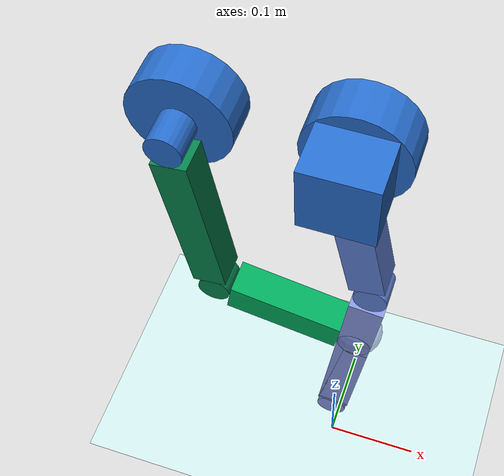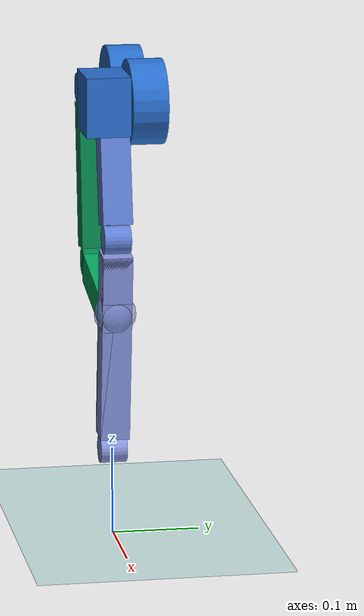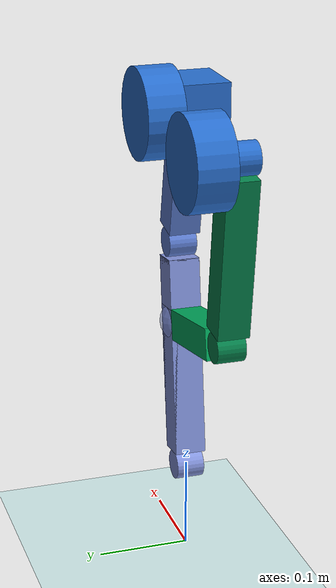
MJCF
<?xml version="1.0" encoding="utf-8"?>
<mujoco model="robot_0">
  <compiler angle="radian" inertiafromgeom="true" coordinate="local" />
  <option timestep="0.01" gravity="0 0 -9.81" integrator="RK4" />
  <size njmax="500" nconmax="100" />
  <worldbody>
    <geom name="floor" type="plane" size="10 10 0.1" pos="0 0 0" rgba="0.8 0.9 0.9 1" />
    <light name="light1" pos="0 0 3" dir="0 0 -1" directional="true" />
    <body name="robot_root" pos="0 0 0.5" quat="1 0 0 0">
      <body name="G">
        <geom name="G_vis0" type="box" rgba="0.1568627450980392 0.42745098039215684 0.8 1.0" contype="1" conaffinity="1" pos="0.0 0.0 0.0" quat="1.0 0.0 0.0 0.0" size="0.0335 0.0335 0.0335" />
        <inertial pos="0.0 0.0 0.0" mass="0.04903493747122909" diaginertia="3.66863057180579e-05 3.66863057180579e-05 3.66863057180579e-05" />
        <body name="L6" pos="0.0 0.0 0.0" quat="0.09853761796664233 5.490065323952282e-17 0.9951333266680702 5.490065323952282e-17">
          <joint name="Main_ground" type="hinge" axis="0 1 0" range="-3.141592653589793 3.141592653589793" damping="0.1" />
          <geom name="L6_vis0" type="box" rgba="0.37254901960784315 0.5019607843137255 0.8352941176470589 1.0" contype="1" conaffinity="1" pos="0.0 0.0 0.07649" quat="1.0 0.0 0.0 0.0" size="0.01675 0.01675 0.059735292703891774" />
          <inertial pos="0.0 0.0 0.07649" mass="0.09693685001461892" diaginertia="0.0001243657034733558 0.0001243657034733558 1.8131229988151018e-05" />
          <body name="L5" pos="3.9850810789398094e-17 0.0 0.15297058540778355" quat="0.9874789974914651 0.0 0.15775052935965425 0.0">
            <joint name="Main_knee" type="hinge" axis="0 1 0" range="-3.141592653589793 3.141592653589793" damping="0.1" />
            <geom name="L5_vis0" type="box" rgba="0.5176470588235295 0.5843137254901961 0.8705882352941177 1.0" contype="1" conaffinity="1" pos="3.122502256758253e-17 0.0 0.1258967831201417" quat="1.0 0.0 0.0 0.0" size="0.016750000417232513 0.016750000417232513 0.10914678270290917" />
            <geom name="L5_vis1" type="box" rgba="0.5176470588235295 0.5843137254901961 0.8705882352941177 1.0" contype="1" conaffinity="1" pos="1.3877787807814457e-17 0.0 0.04406387409204959" quat="1.0 0.0 0.0 0.0" size="0.016750000417232513 0.016750000417232513 0.02731387367481708" />
            <geom name="L5_vis2" type="box" rgba="0.5176470588235295 0.5843137254901961 0.8705882352941177 1.0" contype="1" conaffinity="1" pos="3.8163916471489756e-17 0.0 0.16996065721219128" quat="1.0 0.0 0.0 0.0" size="0.016750000417232513 0.016750000417232513 0.06508290861085958" />
            <inertial pos="0.0 0.0 0.11331" mass="0.20430196607254722" diaginertia="0.0318890529501516 0.03195007230862345 9.923234039844751e-05" />
            <body name="EE" pos="5.551115123125783e-17 0.0 0.2517935662402834" quat="0.05967898086042496 5.74689170874561e-17 0.9982176211846098 5.74689170874561e-17">
              <geom name="EE_vis0" type="sphere" rgba="0.6431372549019608 0.6666666666666666 0.9058823529411765 1.0" contype="1" conaffinity="1" pos="0.0 0.0 0.0" quat="1.0 0.0 0.0 0.0" size="0.002142857142857143" />
              <inertial pos="0.0 0.0 0.0" mass="2.979933439782622e-05" diaginertia="5.473347134294612e-11 5.473347134294612e-11 5.473347134294612e-11" />
            </body>
            <body name="Main_ee_L5Unit" pos="5.551115123125783e-17 0.0 0.2517935662402834" quat="0.04219941206070872 0.04219941206070862 0.705846449039542 -0.7058464490395416">
              <geom name="Main_ee_L5Unit_vis0" type="cylinder" rgba="0.5176470588235295 0.5843137254901961 0.8705882352941177 0.9" contype="1" conaffinity="1" size="0.016 0.015" />
              <inertial pos="0 0 0" mass="0.1" diaginertia="0.00065 0.00065 0.0008" />
            </body>
            <body name="Main_connection_2_L5Pseudo" pos="5.551115123125783e-17 0.0 0.08812774818409916" quat="0.7309513322872746 0.0 -0.6824295933116165 0.0">
              <geom name="Main_connection_2_L5Pseudo_vis0" type="sphere" rgba="0.5176470588235295 0.5843137254901961 0.8705882352941177 0.5" contype="1" conaffinity="1" size="0.02392857202461788" />
              <inertial pos="0 0 0" mass="0.05" diaginertia="1.145153118274651e-05 1.145153118274651e-05 1.145153118274651e-05" />
            </body>
          </body>
          <body name="Main_knee_L6Unit" pos="3.9850810789398094e-17 0.0 0.15297058540778355" quat="0.6982530954055087 0.6982530954055086 0.11154646904597909 -0.11154646904597906">
            <geom name="Main_knee_L6Unit_vis0" type="cylinder" rgba="0.37254901960784315 0.5019607843137255 0.8352941176470589 0.9" contype="1" conaffinity="1" size="0.016 0.015" />
            <inertial pos="0 0 0" mass="0.1" diaginertia="0.00065 0.00065 0.0008" />
          </body>
        </body>
        <body name="Main_ground_GActuator" pos="0.0 0.036750000000000005 0.0" quat="0.0696766178661822 0.06967661786618214 0.7036655234717202 -0.7036655234717203">
          <geom name="Main_ground_GActuator_vis0" type="cylinder" rgba="0.1568627450980392 0.42745098039215684 0.8 0.9" contype="1" conaffinity="1" size="0.048 0.02" />
          <inertial pos="0 0 0" mass="0.44" diaginertia="0.0067466666666666664 0.0067466666666666664 0.01056" />
        </body>
        <body name="Main_ground_GUnit" pos="0.0 0.0 0.0" quat="0.0696766178661822 0.06967661786618214 0.7036655234717202 -0.7036655234717203">
          <geom name="Main_ground_GUnit_vis0" type="cylinder" rgba="0.1568627450980392 0.42745098039215684 0.8 0.9" contype="1" conaffinity="1" size="0.01675 0.01675" />
          <inertial pos="0 0 0" mass="0.1" diaginertia="0.0006979166666666668 0.0006979166666666668 0.0008375000000000001" />
        </body>
        <body name="L3" pos="-0.15 0.0 -0.01" quat="0.06213744155632902 5.73091937666162e-17 0.9980676020975903 5.73091937666162e-17">
          <joint name="Ground_connection" type="hinge" axis="0 1 0" range="-3.141592653589793 3.141592653589793" damping="0.1" />
          <geom name="L3_vis0" type="box" rgba="0.01568627450980392 0.5058823529411764 0.29411764705882354 1.0" contype="1" conaffinity="1" pos="0.0 0.0 0.10078" quat="1.0 0.0 0.0 0.0" size="0.01675 0.01675 0.08402822185373188" />
          <inertial pos="0.0 0.0 0.10078" mass="0.136358771676357" diaginertia="0.0003336837577936235 0.0003336837577936235 2.5504771918965276e-05" />
          <body name="L4" pos="8.326672684688674e-17 0.0 0.20155644370746378" quat="0.8085047933142612 0.0 -0.5884895914014655 0.0">
            <joint name="branch_1" type="hinge" axis="0 1 0" range="-3.141592653589793 3.141592653589793" damping="0.1" />
            <geom name="L4_vis0" type="box" rgba="0.0 0.6627450980392157 0.3607843137254902 1.0" contype="1" conaffinity="1" pos="-0.0 0.0 0.07355" quat="1.0 0.0 0.0 0.0" size="0.01675 0.01675 0.056796753837270064" />
            <inertial pos="-0.0 0.0 0.07355" mass="0.09216826701314518" diaginertia="0.0001077273072689468 0.0001077273072689468 1.723930627591703e-05" />
            <body name="Main_connection_2_L4Pseudo" pos="-2.7755575615628914e-17 0.0 0.14709350767454013" quat="1.0 0.0 0.0 0.0">
              <joint name="Main_connection_2_L4_revolute" type="hinge" axis="0 1 0" range="-3.141592653589793 3.141592653589793" damping="0.1" />
              <geom name="Main_connection_2_L4Pseudo_vis0" type="sphere" rgba="0.0 0.6627450980392157 0.3607843137254902 0.5" contype="1" conaffinity="1" size="0.02392857142857143" />
              <inertial pos="0 0 0" mass="0.05" diaginertia="1.1451530612244902e-05 1.1451530612244902e-05 1.1451530612244902e-05" />
            </body>
          </body>
          <body name="branch_1_L3Unit" pos="8.326672684688674e-17 0.0 0.20155644370746378" quat="0.5716992219743421 0.571699221974342 -0.4161249807376769 0.4161249807376769">
            <geom name="branch_1_L3Unit_vis0" type="cylinder" rgba="0.01568627450980392 0.5058823529411764 0.29411764705882354 0.9" contype="1" conaffinity="1" size="0.016 0.015" />
            <inertial pos="0 0 0" mass="0.1" diaginertia="0.00065 0.00065 0.0008" />
          </body>
        </body>
        <body name="Ground_connection_GActuator" pos="-0.15 0.036750000000000005 -0.01" quat="0.04393780629006307 0.04393780629006299 0.7057403695258029 -0.705740369525803">
          <geom name="Ground_connection_GActuator_vis0" type="cylinder" rgba="0.1568627450980392 0.42745098039215684 0.8 0.9" contype="1" conaffinity="1" size="0.048 0.02" />
          <inertial pos="0 0 0" mass="0.44" diaginertia="0.0067466666666666664 0.0067466666666666664 0.01056" />
        </body>
        <body name="Ground_connection_GUnit" pos="-0.15 0.0 -0.01" quat="0.04393780629006307 0.04393780629006299 0.7057403695258029 -0.705740369525803">
          <geom name="Ground_connection_GUnit_vis0" type="cylinder" rgba="0.1568627450980392 0.42745098039215684 0.8 0.9" contype="1" conaffinity="1" size="0.01675 0.01675" />
          <inertial pos="0 0 0" mass="0.1" diaginertia="0.0006979166666666668 0.0006979166666666668 0.0008375000000000001" />
        </body>
      </body>
    </body>
  </worldbody>
  <actuator>
    <motor name="Main_ground_motor" joint="Main_ground" gear="80" ctrlrange="-1.0 1.0" forcerange="-50 50" />
    <motor name="Main_knee_motor" joint="Main_knee" gear="150" ctrlrange="-1.0 1.0" forcerange="-50 50" />
    <motor name="Ground_connection_motor" joint="Ground_connection" gear="80" ctrlrange="-1.0 1.0" forcerange="-50 50" />
    <motor name="branch_1_motor" joint="branch_1" gear="1" ctrlrange="-1.0 1.0" forcerange="-50 50" />
    <motor name="Main_connection_2_L4_revolute_motor" joint="Main_connection_2_L4_revolute" gear="1" ctrlrange="-1.0 1.0" forcerange="-50 50" />
  </actuator>
</mujoco>
